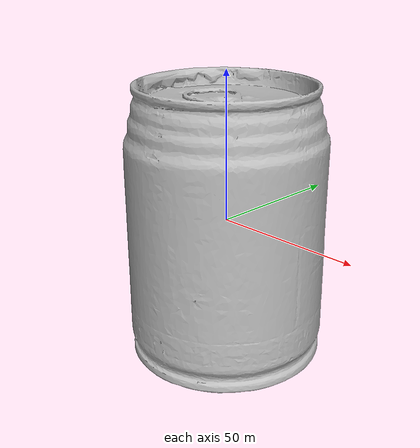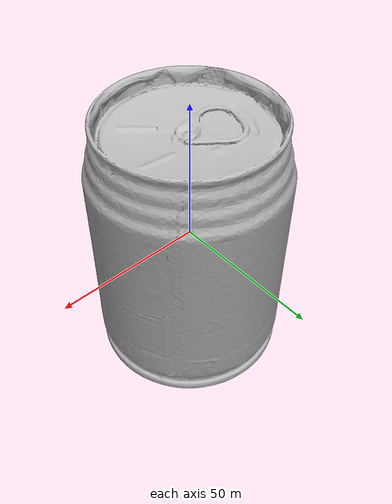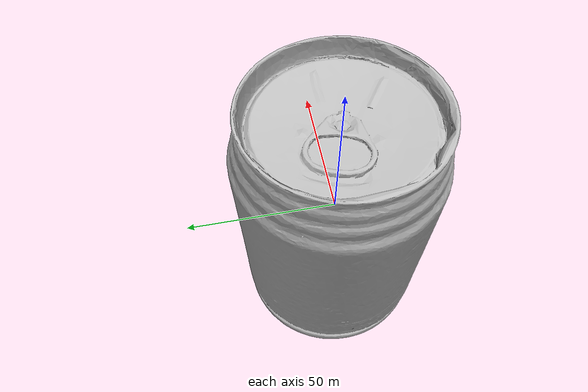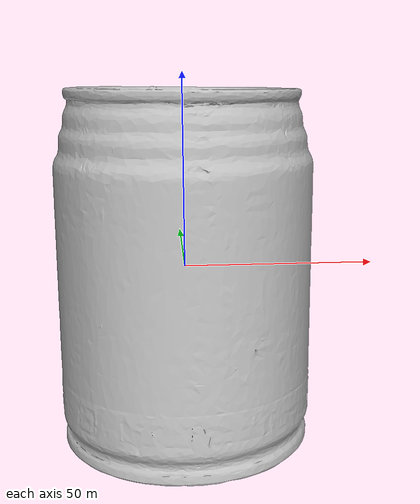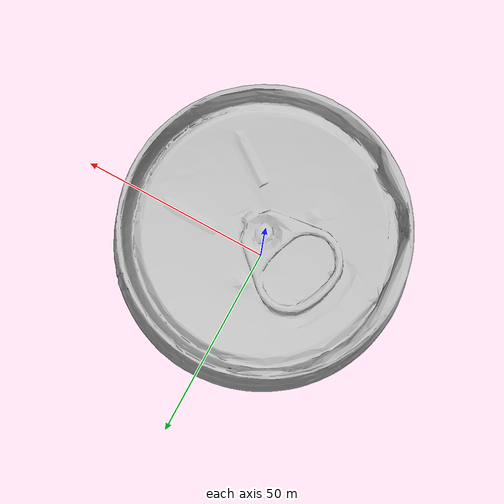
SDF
<sdf version="1.4">
 <world name="default">
  <light name="light1" type="point">
   <pose>0 0 1 0 0 0</pose>
   <diffuse>3 3 3 1</diffuse>
   <specular>3 3 3 1</specular>
  </light>
  <light name="light2" type="point">
   <pose>0 0.5 2 0 0 0</pose>
   <diffuse>1 1 1 1</diffuse>
   <specular>1 1 1 1</specular>
  </light>
  <light name="light3" type="point">
   <pose>0 0.5 2 0 0 0</pose>
   <diffuse>3 3 3 1</diffuse>
   <specular>3 3 3 1</specular>
  </light>
  <scene><ambient>0.7 0.7 0.7</ambient></scene>
  <model name="box1">
   <link name="link_box1">
    <collision name="default">
     <geometry>
      <mesh><uri>model://wooden_puzzle1/collision_meshes/collision.obj</uri><scale>1.0 1.0 1.0</scale></mesh>
     </geometry>
     <surface>
      <friction><ode><mu>0.5</mu><mu2>0.5</mu2></ode></friction>
      <contact><ode><max_vel>0</max_vel><min_depth>0.0001</min_depth><kp>1e8</kp></ode></contact>
     </surface>
    </collision>
    <visual name="default">
     <geometry>
      <mesh><uri>model://wooden_puzzle1/visual_meshes/visual.dae</uri><scale>1.0 1.0 1.0</scale></mesh>
     </geometry>
    </visual>
    <inertial>
     <mass>0.020629532635211945</mass>
     <pose>-0.0001735068071866408 7.972260937094688e-05 -9.191555000143126e-05 -0.07784798349428995 -0.2636160818751574 -0.552872324185161</pose>
     <inertia>
      <ixx>3.8922285e-06</ixx>
      <iyy>3.817302e-06</iyy>
      <izz>3.8628423e-06</izz>
      <ixy>0</ixy>
      <ixz>0</ixz>
      <iyz>0</iyz>
     </inertia>
    </inertial>
   </link>
   <pose>0.2829357087612152 -0.07754576206207275 0.016801994293928146 0.010516244782886383 -0.009456490048378115 3.1308975818736107</pose>
  </model>
  <model name="box3">
   <link name="link_box3">
    <collision name="default">
     <geometry>
      <mesh><uri>model://wooden_puzzle2/collision_meshes/collision.obj</uri><scale>1.0 1.0 1.0</scale></mesh>
     </geometry>
     <surface>
      <friction><ode><mu>0.5</mu><mu2>0.5</mu2></ode></friction>
      <contact><ode><max_vel>0</max_vel><min_depth>0.0001</min_depth><kp>1e8</kp></ode></contact>
     </surface>
    </collision>
    <visual name="default">
     <geometry>
      <mesh><uri>model://wooden_puzzle2/visual_meshes/visual.dae</uri><scale>1.0 1.0 1.0</scale></mesh>
     </geometry>
    </visual>
    <inertial>
     <mass>0.05583015829324722</mass>
     <pose>2.7402536943554878e-05 4.997663199901581e-05 6.587122334167361e-05 -0.19203199902598803 0.6112853789707493 -0.6338693450254121</pose>
     <inertia>
      <ixx>1.0378231e-05</ixx>
      <iyy>1.06642165e-05</iyy>
      <izz>1.0512509e-05</izz>
      <ixy>0</ixy>
      <ixz>0</ixz>
      <iyz>0</iyz>
     </inertia>
    </inertial>
   </link>
   <pose>-0.08263810724020004 0.3831408619880676 0.016917726024985313 0.020848643173124824 0.0007210443611908912 -1.570925161895878</pose>
  </model>
  <model name="can1">
   <link name="link_can1">
    <collision name="default">
     <geometry>
      <mesh><uri>model://pepsi/collision_meshes/collision.obj</uri><scale>1.0 1.0 1.0</scale></mesh>
     </geometry>
     <surface>
      <friction><ode><mu>0.5</mu><mu2>0.5</mu2></ode></friction>
      <contact><ode><max_vel>0</max_vel><min_depth>0.0001</min_depth><kp>1e8</kp></ode></contact>
     </surface>
    </collision>
    <visual name="default">
     <geometry><mesh><uri>model://pepsi/visual_meshes/visual.dae</uri><scale>1.0 1.0 1.0</scale></mesh></geometry>
    </visual>
    <inertial>
     <mass>0.49348899722099304</mass>
     <pose>-7.5590331107378e-05 2.9931279641459696e-05 -0.0003384356386959553 -0.0010677622415870868 -0.0021735774955872703 0.5673701275352521</pose>
     <inertia>
      <ixx>0.0009831247</ixx>
      <iyy>0.0009824084</iyy>
      <izz>0.00020924417</izz>
      <ixy>0</ixy>
      <ixz>0</ixz>
      <iyz>0</iyz>
     </inertia>
    </inertial>
   </link>
   <pose>0.12858857214450836 -0.13741692900657654 0.07449635118246078 -1.8282012315002532e-05 2.1651123528398354e-06 1.0031198031295776</pose>
  </model>
  <model name="can2">
   <link name="link_can2">
    <collision name="default">
     <geometry>
      <mesh><uri>model://redbull/collision_meshes/collision.obj</uri><scale>1.0 1.0 1.0</scale></mesh>
     </geometry>
     <surface>
      <friction><ode><mu>0.5</mu><mu2>0.5</mu2></ode></friction>
      <contact><ode><max_vel>0</max_vel><min_depth>0.0001</min_depth><kp>1e8</kp></ode></contact>
     </surface>
    </collision>
    <visual name="default">
     <geometry>
      <mesh><uri>model://redbull/visual_meshes/visual.dae</uri><scale>1.0 1.0 1.0</scale></mesh>
     </geometry>
    </visual>
    <inertial>
     <mass>0.3443465232849121</mass>
     <pose>-2.2127078409539536e-05 -0.00012659528874792159 -0.0006860987632535398 0.0011367237692686564 -0.010800964902263904 0.5859097418646089</pose>
     <inertia>
      <ixx>0.0003237599</ixx>
      <iyy>0.00032403314</iyy>
      <izz>0.00019212745</izz>
      <ixy>0</ixy>
      <ixz>0</ixz>
      <iyz>0</iyz>
     </inertia>
    </inertial>
   </link>
   <pose>0.2572241425514221 -0.2719214856624603 0.04638563469052315 -0.010488908953634387 0.007261194060577386 -1.48298265120521</pose>
  </model>
  <physics type="ode">
   <max_contacts>50</max_contacts>
   <ode>
    <solver><type>quick</type><iters>75</iters></solver>
    <constraints>
     <contact_max_correcting_vel>0</contact_max_correcting_vel>
     <contact_surface_layer>0</contact_surface_layer>
    </constraints>
   </ode>
  </physics>
 </world>
</sdf>
